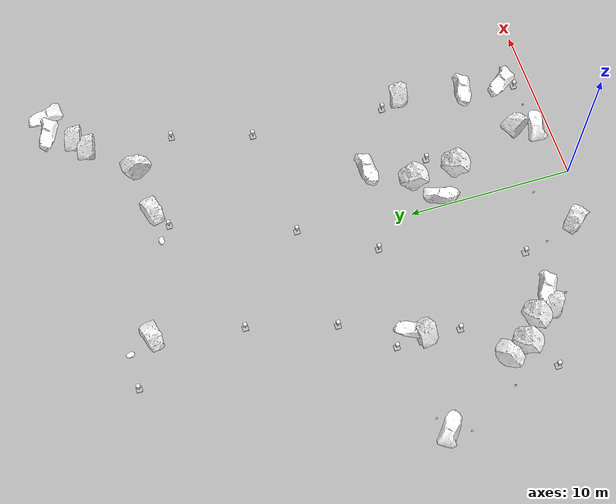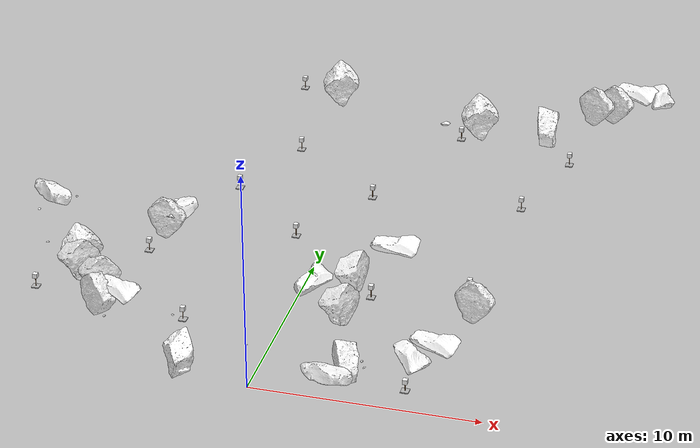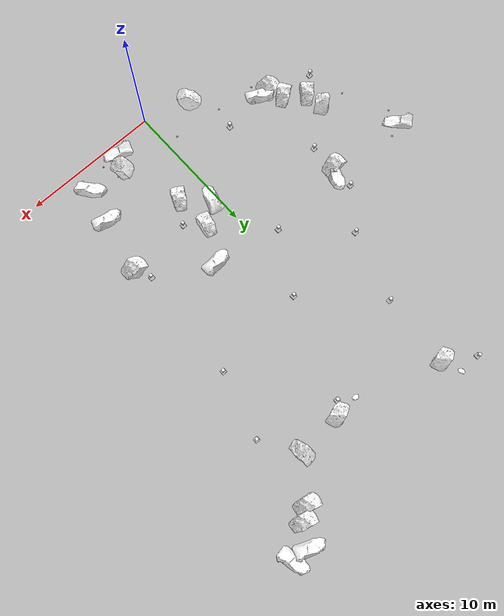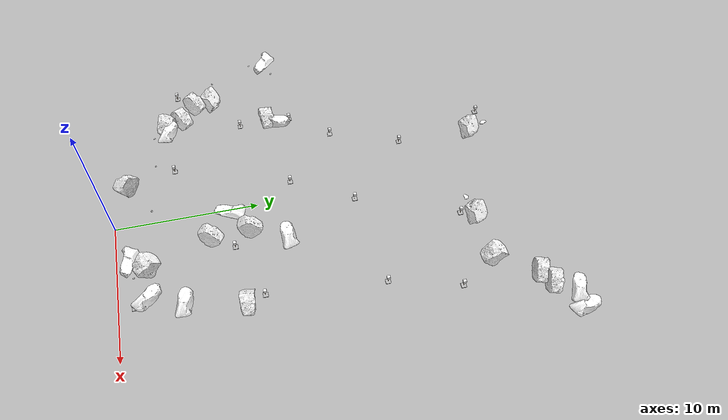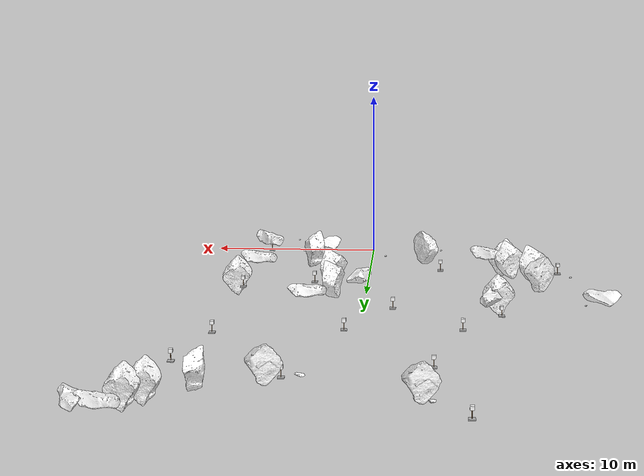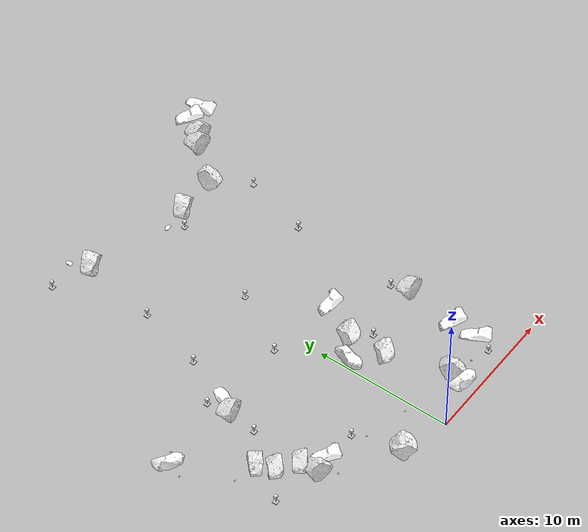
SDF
<sdf version="1.7">
 <world name="rover_world">
  <model name="Rock_2">
   <static>true</static>
   <pose>-4.3338 3.2414 0.8885 0.0000 0.0000 2.5552</pose>
   <link name="rock_link">
    <visual name="visual">
     <geometry><mesh><uri>model://rock_5/meshes/rock_5.obj</uri></mesh></geometry>
     <material>
      <ambient>1 1 1 1</ambient>
      <diffuse>1 1 1 1</diffuse>
      <pbr><metal><albedo_map>model://rock_5/meshes/rock_small_diffuse.jpg</albedo_map></metal></pbr>
     </material>
    </visual>
    <collision name="collision">
     <geometry><mesh><uri>model://rock_5/meshes/rock_5.obj</uri></mesh></geometry>
    </collision>
   </link>
  </model>
  <model name="Rock_3">
   <static>true</static>
   <pose>9.4094 27.0152 0.6893 0.0000 0.0000 -0.1512</pose>
   <link name="rock_link">
    <visual name="visual">
     <geometry><mesh><uri>model://rock_1/meshes/rock_1.obj</uri></mesh></geometry>
     <material>
      <ambient>1 1 1 1</ambient>
      <diffuse>1 1 1 1</diffuse>
      <pbr><metal><albedo_map>model://rock_1/meshes/rock_1_diffuse.jpg</albedo_map></metal></pbr>
     </material>
    </visual>
    <collision name="collision">
     <geometry><mesh><uri>model://rock_1/meshes/rock_1.obj</uri></mesh></geometry>
    </collision>
   </link>
  </model>
  <model name="Rock_5">
   <static>true</static>
   <pose>-11.9647 8.0767 0.6045 0.0000 0.0000 -2.3512</pose>
   <link name="rock_link">
    <visual name="visual">
     <geometry><mesh><uri>model://rock_5/meshes/rock_5.obj</uri></mesh></geometry>
     <material>
      <ambient>1 1 1 1</ambient>
      <diffuse>1 1 1 1</diffuse>
      <pbr><metal><albedo_map>model://rock_5/meshes/rock_small_diffuse.jpg</albedo_map></metal></pbr>
     </material>
    </visual>
    <collision name="collision">
     <geometry><mesh><uri>model://rock_5/meshes/rock_5.obj</uri></mesh></geometry>
    </collision>
   </link>
  </model>
  <model name="Rock_11">
   <static>true</static>
   <pose>-9.4877 6.1632 0.8550 0.0000 0.0000 0.9288</pose>
   <link name="rock_link">
    <visual name="visual">
     <geometry><mesh><uri>model://rock_1/meshes/rock_1.obj</uri></mesh></geometry>
     <material>
      <ambient>1 1 1 1</ambient>
      <diffuse>1 1 1 1</diffuse>
      <pbr><metal><albedo_map>model://rock_1/meshes/rock_1_diffuse.jpg</albedo_map></metal></pbr>
     </material>
    </visual>
    <collision name="collision">
     <geometry><mesh><uri>model://rock_1/meshes/rock_1.obj</uri></mesh></geometry>
    </collision>
   </link>
  </model>
  <model name="Rock_13">
   <static>true</static>
   <pose>0.4712 8.0057 0.2579 0.0000 0.0000 1.4002</pose>
   <link name="rock_link">
    <visual name="visual">
     <geometry><mesh><uri>model://rock_4/meshes/rock_4.obj</uri></mesh></geometry>
     <material>
      <ambient>1 1 1 1</ambient>
      <diffuse>1 1 1 1</diffuse>
      <pbr><metal><albedo_map>model://rock_4/meshes/rock_4_diffuse.jpg</albedo_map></metal></pbr>
     </material>
    </visual>
    <collision name="collision">
     <geometry><mesh><uri>model://rock_4/meshes/rock_4.obj</uri></mesh></geometry>
    </collision>
   </link>
  </model>
  <model name="Rock_14">
   <static>true</static>
   <pose>-7.4767 3.2230 0.3288 0.0000 0.0000 -0.8752</pose>
   <link name="rock_link">
    <visual name="visual">
     <geometry><mesh><uri>model://rock_5/meshes/rock_5.obj</uri></mesh></geometry>
     <material>
      <ambient>1 1 1 1</ambient>
      <diffuse>1 1 1 1</diffuse>
      <pbr><metal><albedo_map>model://rock_5/meshes/rock_small_diffuse.jpg</albedo_map></metal></pbr>
     </material>
    </visual>
    <collision name="collision">
     <geometry><mesh><uri>model://rock_5/meshes/rock_5.obj</uri></mesh></geometry>
    </collision>
   </link>
  </model>
  <model name="Rock_15">
   <static>true</static>
   <pose>4.6874 1.2775 0.9768 0.0000 0.0000 -1.5824</pose>
   <link name="rock_link">
    <visual name="visual">
     <geometry><mesh><uri>model://rock_5/meshes/rock_5.obj</uri></mesh></geometry>
     <material>
      <ambient>1 1 1 1</ambient>
      <diffuse>1 1 1 1</diffuse>
      <pbr><metal><albedo_map>model://rock_5/meshes/rock_small_diffuse.jpg</albedo_map></metal></pbr>
     </material>
    </visual>
    <collision name="collision">
     <geometry><mesh><uri>model://rock_5/meshes/rock_5.obj</uri></mesh></geometry>
    </collision>
   </link>
  </model>
  <model name="Rock_18">
   <static>true</static>
   <pose>6.4301 2.1367 0.9613 0.0000 0.0000 -0.7533</pose>
   <link name="rock_link">
    <visual name="visual">
     <geometry><mesh><uri>model://rock_4/meshes/rock_4.obj</uri></mesh></geometry>
     <material>
      <ambient>1 1 1 1</ambient>
      <diffuse>1 1 1 1</diffuse>
      <pbr><metal><albedo_map>model://rock_4/meshes/rock_4_diffuse.jpg</albedo_map></metal></pbr>
     </material>
    </visual>
    <collision name="collision">
     <geometry><mesh><uri>model://rock_4/meshes/rock_4.obj</uri></mesh></geometry>
    </collision>
   </link>
  </model>
  <model name="Rock_21">
   <static>true</static>
   <pose>7.1123 24.9508 0.4531 0.0000 0.0000 -1.3642</pose>
   <link name="rock_link">
    <visual name="visual">
     <geometry><mesh><uri>model://rock_1/meshes/rock_1.obj</uri></mesh></geometry>
     <material>
      <ambient>1 1 1 1</ambient>
      <diffuse>1 1 1 1</diffuse>
      <pbr><metal><albedo_map>model://rock_1/meshes/rock_1_diffuse.jpg</albedo_map></metal></pbr>
     </material>
    </visual>
    <collision name="collision">
     <geometry><mesh><uri>model://rock_1/meshes/rock_1.obj</uri></mesh></geometry>
    </collision>
   </link>
  </model>
  <model name="Rock_22">
   <static>true</static>
   <pose>-7.6215 11.3035 0.4455 0.0000 0.0000 0.1312</pose>
   <link name="rock_link">
    <visual name="visual">
     <geometry><mesh><uri>model://rock_1/meshes/rock_1.obj</uri></mesh></geometry>
     <material>
      <ambient>1 1 1 1</ambient>
      <diffuse>1 1 1 1</diffuse>
      <pbr><metal><albedo_map>model://rock_1/meshes/rock_1_diffuse.jpg</albedo_map></metal></pbr>
     </material>
    </visual>
    <collision name="collision">
     <geometry><mesh><uri>model://rock_1/meshes/rock_1.obj</uri></mesh></geometry>
    </collision>
   </link>
  </model>
  <model name="Rock_27">
   <static>true</static>
   <pose>-3.4315 27.1530 0.5659 0.0000 0.0000 -2.8095</pose>
   <link name="rock_link">
    <visual name="visual">
     <geometry><mesh><uri>model://rock_1/meshes/rock_1.obj</uri></mesh></geometry>
     <material>
      <ambient>1 1 1 1</ambient>
      <diffuse>1 1 1 1</diffuse>
      <pbr><metal><albedo_map>model://rock_1/meshes/rock_1_diffuse.jpg</albedo_map></metal></pbr>
     </material>
    </visual>
    <collision name="collision">
     <geometry><mesh><uri>model://rock_1/meshes/rock_1.obj</uri></mesh></geometry>
    </collision>
   </link>
  </model>
  <model name="Rock_28">
   <static>true</static>
   <pose>6.9283 4.3411 0.3462 0.0000 0.0000 -0.0872</pose>
   <link name="rock_link">
    <visual name="visual">
     <geometry><mesh><uri>model://rock_4/meshes/rock_4.obj</uri></mesh></geometry>
     <material>
      <ambient>1 1 1 1</ambient>
      <diffuse>1 1 1 1</diffuse>
      <pbr><metal><albedo_map>model://rock_4/meshes/rock_4_diffuse.jpg</albedo_map></metal></pbr>
     </material>
    </visual>
    <collision name="collision">
     <geometry><mesh><uri>model://rock_4/meshes/rock_4.obj</uri></mesh></geometry>
    </collision>
   </link>
  </model>
  <model name="Rock_30">
   <static>true</static>
   <pose>4.3004 2.3384 0.5464 0.0000 0.0000 -0.7868</pose>
   <link name="rock_link">
    <visual name="visual">
     <geometry><mesh><uri>model://rock_5/meshes/rock_5.obj</uri></mesh></geometry>
     <material>
      <ambient>1 1 1 1</ambient>
      <diffuse>1 1 1 1</diffuse>
      <pbr><metal><albedo_map>model://rock_5/meshes/rock_small_diffuse.jpg</albedo_map></metal></pbr>
     </material>
    </visual>
    <collision name="collision">
     <geometry><mesh><uri>model://rock_5/meshes/rock_5.obj</uri></mesh></geometry>
    </collision>
   </link>
  </model>
  <model name="Rock_34">
   <static>true</static>
   <pose>11.2532 29.5879 0.3222 0.0000 0.0000 -0.2018</pose>
   <link name="rock_link">
    <visual name="visual">
     <geometry><mesh><uri>model://rock_4/meshes/rock_4.obj</uri></mesh></geometry>
     <material>
      <ambient>1 1 1 1</ambient>
      <diffuse>1 1 1 1</diffuse>
      <pbr><metal><albedo_map>model://rock_4/meshes/rock_4_diffuse.jpg</albedo_map></metal></pbr>
     </material>
    </visual>
    <collision name="collision">
     <geometry><mesh><uri>model://rock_4/meshes/rock_4.obj</uri></mesh></geometry>
    </collision>
   </link>
  </model>
  <model name="Rock_37">
   <static>true</static>
   <pose>3.2085 0.9124 0.3672 0.0000 0.0000 3.0550</pose>
   <link name="rock_link">
    <visual name="visual">
     <geometry><mesh><uri>model://rock_4/meshes/rock_4.obj</uri></mesh></geometry>
     <material>
      <ambient>1 1 1 1</ambient>
      <diffuse>1 1 1 1</diffuse>
      <pbr><metal><albedo_map>model://rock_4/meshes/rock_4_diffuse.jpg</albedo_map></metal></pbr>
     </material>
    </visual>
    <collision name="collision">
     <geometry><mesh><uri>model://rock_4/meshes/rock_4.obj</uri></mesh></geometry>
    </collision>
   </link>
  </model>
  <model name="Rock_38">
   <static>true</static>
   <pose>3.3098 11.7038 0.3784 0.0000 0.0000 0.1927</pose>
   <link name="rock_link">
    <visual name="visual">
     <geometry><mesh><uri>model://rock_4/meshes/rock_4.obj</uri></mesh></geometry>
     <material>
      <ambient>1 1 1 1</ambient>
      <diffuse>1 1 1 1</diffuse>
      <pbr><metal><albedo_map>model://rock_4/meshes/rock_4_diffuse.jpg</albedo_map></metal></pbr>
     </material>
    </visual>
    <collision name="collision">
     <geometry><mesh><uri>model://rock_4/meshes/rock_4.obj</uri></mesh></geometry>
    </collision>
   </link>
  </model>
  <model name="Rock_39">
   <static>true</static>
   <pose>-8.2333 5.0610 0.8232 0.0000 0.0000 0.7274</pose>
   <link name="rock_link">
    <visual name="visual">
     <geometry><mesh><uri>model://rock_1/meshes/rock_1.obj</uri></mesh></geometry>
     <material>
      <ambient>1 1 1 1</ambient>
      <diffuse>1 1 1 1</diffuse>
      <pbr><metal><albedo_map>model://rock_1/meshes/rock_1_diffuse.jpg</albedo_map></metal></pbr>
     </material>
    </visual>
    <collision name="collision">
     <geometry><mesh><uri>model://rock_1/meshes/rock_1.obj</uri></mesh></geometry>
    </collision>
   </link>
  </model>
  <model name="Rock_41">
   <static>true</static>
   <pose>-13.3058 12.3646 0.3723 0.0000 0.0000 2.6397</pose>
   <link name="rock_link">
    <visual name="visual">
     <geometry><mesh><uri>model://rock_4/meshes/rock_4.obj</uri></mesh></geometry>
     <material>
      <ambient>1 1 1 1</ambient>
      <diffuse>1 1 1 1</diffuse>
      <pbr><metal><albedo_map>model://rock_4/meshes/rock_4_diffuse.jpg</albedo_map></metal></pbr>
     </material>
    </visual>
    <collision name="collision">
     <geometry><mesh><uri>model://rock_4/meshes/rock_4.obj</uri></mesh></geometry>
    </collision>
   </link>
  </model>
  <model name="Rock_42">
   <static>true</static>
   <pose>12.5382 29.4933 0.3363 0.0000 0.0000 -1.1986</pose>
   <link name="rock_link">
    <visual name="visual">
     <geometry><mesh><uri>model://rock_4/meshes/rock_4.obj</uri></mesh></geometry>
     <material>
      <ambient>1 1 1 1</ambient>
      <diffuse>1 1 1 1</diffuse>
      <pbr><metal><albedo_map>model://rock_4/meshes/rock_4_diffuse.jpg</albedo_map></metal></pbr>
     </material>
    </visual>
    <collision name="collision">
     <geometry><mesh><uri>model://rock_4/meshes/rock_4.obj</uri></mesh></geometry>
    </collision>
   </link>
  </model>
  <model name="Rock_43">
   <static>true</static>
   <pose>-10.4777 8.1759 0.5954 0.0000 0.0000 -2.3483</pose>
   <link name="rock_link">
    <visual name="visual">
     <geometry><mesh><uri>model://rock_1/meshes/rock_1.obj</uri></mesh></geometry>
     <material>
      <ambient>1 1 1 1</ambient>
      <diffuse>1 1 1 1</diffuse>
      <pbr><metal><albedo_map>model://rock_1/meshes/rock_1_diffuse.jpg</albedo_map></metal></pbr>
     </material>
    </visual>
    <collision name="collision">
     <geometry><mesh><uri>model://rock_1/meshes/rock_1.obj</uri></mesh></geometry>
    </collision>
   </link>
  </model>
  <model name="Rock_44">
   <static>true</static>
   <pose>2.5189 9.0520 0.5126 0.0000 0.0000 1.4471</pose>
   <link name="rock_link">
    <visual name="visual">
     <geometry><mesh><uri>model://rock_1/meshes/rock_1.obj</uri></mesh></geometry>
     <material>
      <ambient>1 1 1 1</ambient>
      <diffuse>1 1 1 1</diffuse>
      <pbr><metal><albedo_map>model://rock_1/meshes/rock_1_diffuse.jpg</albedo_map></metal></pbr>
     </material>
    </visual>
    <collision name="collision">
     <geometry><mesh><uri>model://rock_1/meshes/rock_1.obj</uri></mesh></geometry>
    </collision>
   </link>
  </model>
  <model name="Rock_47">
   <static>true</static>
   <pose>7.6584 7.8060 0.4379 0.0000 0.0000 -0.0052</pose>
   <link name="rock_link">
    <visual name="visual">
     <geometry><mesh><uri>model://rock_1/meshes/rock_1.obj</uri></mesh></geometry>
     <material>
      <ambient>1 1 1 1</ambient>
      <diffuse>1 1 1 1</diffuse>
      <pbr><metal><albedo_map>model://rock_1/meshes/rock_1_diffuse.jpg</albedo_map></metal></pbr>
     </material>
    </visual>
    <collision name="collision">
     <geometry><mesh><uri>model://rock_1/meshes/rock_1.obj</uri></mesh></geometry>
    </collision>
   </link>
  </model>
  <model name="Rock_48">
   <static>true</static>
   <pose>-13.6411 11.2184 0.3448 0.0000 0.0000 1.3356</pose>
   <link name="rock_link">
    <visual name="visual">
     <geometry><mesh><uri>model://rock_5/meshes/rock_5.obj</uri></mesh></geometry>
     <material>
      <ambient>1 1 1 1</ambient>
      <diffuse>1 1 1 1</diffuse>
      <pbr><metal><albedo_map>model://rock_5/meshes/rock_small_diffuse.jpg</albedo_map></metal></pbr>
     </material>
    </visual>
    <collision name="collision">
     <geometry><mesh><uri>model://rock_5/meshes/rock_5.obj</uri></mesh></geometry>
    </collision>
   </link>
  </model>
  <model name="Rock_50">
   <static>true</static>
   <pose>4.1854 25.2223 0.6471 0.0000 0.0000 -2.7595</pose>
   <link name="rock_link">
    <visual name="visual">
     <geometry><mesh><uri>model://rock_1/meshes/rock_1.obj</uri></mesh></geometry>
     <material>
      <ambient>1 1 1 1</ambient>
      <diffuse>1 1 1 1</diffuse>
      <pbr><metal><albedo_map>model://rock_1/meshes/rock_1_diffuse.jpg</albedo_map></metal></pbr>
     </material>
    </visual>
    <collision name="collision">
     <geometry><mesh><uri>model://rock_1/meshes/rock_1.obj</uri></mesh></geometry>
    </collision>
   </link>
  </model>
  <model name="Rock_53">
   <static>true</static>
   <pose>-0.8589 2.6259 0.3312 0.0000 0.0000 2.7270</pose>
   <link name="rock_link">
    <visual name="visual">
     <geometry><mesh><uri>model://rock_5/meshes/rock_5.obj</uri></mesh></geometry>
     <material>
      <ambient>1 1 1 1</ambient>
      <diffuse>1 1 1 1</diffuse>
      <pbr><metal><albedo_map>model://rock_5/meshes/rock_small_diffuse.jpg</albedo_map></metal></pbr>
     </material>
    </visual>
    <collision name="collision">
     <geometry><mesh><uri>model://rock_5/meshes/rock_5.obj</uri></mesh></geometry>
    </collision>
   </link>
  </model>
  <model name="Rock_59">
   <static>true</static>
   <pose>-7.2591 4.4158 0.7462 0.0000 0.0000 -0.3174</pose>
   <link name="rock_link">
    <visual name="visual">
     <geometry><mesh><uri>model://rock_4/meshes/rock_4.obj</uri></mesh></geometry>
     <material>
      <ambient>1 1 1 1</ambient>
      <diffuse>1 1 1 1</diffuse>
      <pbr><metal><albedo_map>model://rock_4/meshes/rock_4_diffuse.jpg</albedo_map></metal></pbr>
     </material>
    </visual>
    <collision name="collision">
     <geometry><mesh><uri>model://rock_4/meshes/rock_4.obj</uri></mesh></geometry>
    </collision>
   </link>
  </model>
  <model name="Rock_61">
   <static>true</static>
   <pose>2.6144 6.1983 0.4876 0.0000 0.0000 1.1611</pose>
   <link name="rock_link">
    <visual name="visual">
     <geometry><mesh><uri>model://rock_1/meshes/rock_1.obj</uri></mesh></geometry>
     <material>
      <ambient>1 1 1 1</ambient>
      <diffuse>1 1 1 1</diffuse>
      <pbr><metal><albedo_map>model://rock_1/meshes/rock_1_diffuse.jpg</albedo_map></metal></pbr>
     </material>
    </visual>
    <collision name="collision">
     <geometry><mesh><uri>model://rock_1/meshes/rock_1.obj</uri></mesh></geometry>
    </collision>
   </link>
  </model>
  <model name="Rock_62">
   <static>true</static>
   <pose>-2.9504 1.3031 0.4029 0.0000 0.0000 2.3505</pose>
   <link name="rock_link">
    <visual name="visual">
     <geometry><mesh><uri>model://rock_1/meshes/rock_1.obj</uri></mesh></geometry>
     <material>
      <ambient>1 1 1 1</ambient>
      <diffuse>1 1 1 1</diffuse>
      <pbr><metal><albedo_map>model://rock_1/meshes/rock_1_diffuse.jpg</albedo_map></metal></pbr>
     </material>
    </visual>
    <collision name="collision">
     <geometry><mesh><uri>model://rock_1/meshes/rock_1.obj</uri></mesh></geometry>
    </collision>
   </link>
  </model>
  <model name="Rock_73">
   <static>true</static>
   <pose>3.2151 1.9229 0.4902 0.0000 0.0000 -1.0682</pose>
   <link name="rock_link">
    <visual name="visual">
     <geometry><mesh><uri>model://rock_1/meshes/rock_1.obj</uri></mesh></geometry>
     <material>
      <ambient>1 1 1 1</ambient>
      <diffuse>1 1 1 1</diffuse>
      <pbr><metal><albedo_map>model://rock_1/meshes/rock_1_diffuse.jpg</albedo_map></metal></pbr>
     </material>
    </visual>
    <collision name="collision">
     <geometry><mesh><uri>model://rock_1/meshes/rock_1.obj</uri></mesh></geometry>
    </collision>
   </link>
  </model>
  <model name="Rock_78">
   <static>true</static>
   <pose>-8.4663 3.9484 0.6467 0.0000 0.0000 -0.4961</pose>
   <link name="rock_link">
    <visual name="visual">
     <geometry><mesh><uri>model://rock_1/meshes/rock_1.obj</uri></mesh></geometry>
     <material>
      <ambient>1 1 1 1</ambient>
      <diffuse>1 1 1 1</diffuse>
      <pbr><metal><albedo_map>model://rock_1/meshes/rock_1_diffuse.jpg</albedo_map></metal></pbr>
     </material>
    </visual>
    <collision name="collision">
     <geometry><mesh><uri>model://rock_1/meshes/rock_1.obj</uri></mesh></geometry>
    </collision>
   </link>
  </model>
  <model name="Rock_81">
   <static>true</static>
   <pose>-3.9130 28.0798 0.2544 0.0000 0.0000 -1.5016</pose>
   <link name="rock_link">
    <visual name="visual">
     <geometry><mesh><uri>model://rock_8/meshes/rock_8.obj</uri></mesh></geometry>
     <material>
      <ambient>1 1 1 1</ambient>
      <diffuse>1 1 1 1</diffuse>
      <pbr><metal><albedo_map>model://rock_5/meshes/rock_small_diffuse.jpg</albedo_map></metal></pbr>
     </material>
    </visual>
    <collision name="collision">
     <geometry><mesh><uri>model://rock_8/meshes/rock_8.obj</uri></mesh></geometry>
    </collision>
   </link>
  </model>
  <model name="Rock_88">
   <static>true</static>
   <pose>10.2940 27.6255 0.6044 0.0000 0.0000 -0.1288</pose>
   <link name="rock_link">
    <visual name="visual">
     <geometry><mesh><uri>model://rock_1/meshes/rock_1.obj</uri></mesh></geometry>
     <material>
      <ambient>1 1 1 1</ambient>
      <diffuse>1 1 1 1</diffuse>
      <pbr><metal><albedo_map>model://rock_1/meshes/rock_1_diffuse.jpg</albedo_map></metal></pbr>
     </material>
    </visual>
    <collision name="collision">
     <geometry><mesh><uri>model://rock_1/meshes/rock_1.obj</uri></mesh></geometry>
    </collision>
   </link>
  </model>
  <model name="Rock_91">
   <static>true</static>
   <pose>-7.1470 12.4487 0.3002 0.0000 0.0000 -1.7960</pose>
   <link name="rock_link">
    <visual name="visual">
     <geometry><mesh><uri>model://rock_4/meshes/rock_4.obj</uri></mesh></geometry>
     <material>
      <ambient>1 1 1 1</ambient>
      <diffuse>1 1 1 1</diffuse>
      <pbr><metal><albedo_map>model://rock_4/meshes/rock_4_diffuse.jpg</albedo_map></metal></pbr>
     </material>
    </visual>
    <collision name="collision">
     <geometry><mesh><uri>model://rock_4/meshes/rock_4.obj</uri></mesh></geometry>
    </collision>
   </link>
  </model>
  <model name="Rock_123">
   <static>true</static>
   <pose>-12.4082 12.8481 0.3149 0.0000 0.0000 2.3777</pose>
   <link name="rock_link">
    <visual name="visual">
     <geometry><mesh><uri>model://rock_5/meshes/rock_5.obj</uri></mesh></geometry>
     <material>
      <ambient>1 1 1 1</ambient>
      <diffuse>1 1 1 1</diffuse>
      <pbr><metal><albedo_map>model://rock_5/meshes/rock_small_diffuse.jpg</albedo_map></metal></pbr>
     </material>
    </visual>
    <collision name="collision">
     <geometry><mesh><uri>model://rock_5/meshes/rock_5.obj</uri></mesh></geometry>
    </collision>
   </link>
  </model>
  <model name="Rock_170">
   <static>true</static>
   <pose>2.5360 24.6837 0.2121 0.0000 0.0000 2.8446</pose>
   <link name="rock_link">
    <visual name="visual">
     <geometry><mesh><uri>model://rock_8/meshes/rock_8.obj</uri></mesh></geometry>
     <material>
      <ambient>1 1 1 1</ambient>
      <diffuse>1 1 1 1</diffuse>
      <pbr><metal><albedo_map>model://rock_5/meshes/rock_small_diffuse.jpg</albedo_map></metal></pbr>
     </material>
    </visual>
    <collision name="collision">
     <geometry><mesh><uri>model://rock_8/meshes/rock_8.obj</uri></mesh></geometry>
    </collision>
   </link>
  </model>
  <model name="ArUco_51">
   <static>true</static>
   <pose>3.1830 8.0120 0.0848 0.0000 0.0000 0.0000</pose>
   <include><uri>model://aruco_1</uri></include>
  </model>
  <model name="ArUco_52">
   <static>true</static>
   <pose>7.2690 9.4820 0.1802 0.0000 0.0000 0.0000</pose>
   <include><uri>model://aruco_2</uri></include>
  </model>
  <model name="ArUco_53">
   <static>true</static>
   <pose>7.8780 17.5830 -0.0338 0.0000 0.0000 0.0000</pose>
   <include><uri>model://aruco_3</uri></include>
  </model>
  <model name="ArUco_54">
   <static>true</static>
   <pose>9.2250 22.3890 -0.0094 0.0000 0.0000 0.0000</pose>
   <include><uri>model://aruco_4</uri></include>
  </model>
  <model name="ArUco_55">
   <static>true</static>
   <pose>3.5180 23.9900 -0.2141 0.0000 0.0000 0.0000</pose>
   <include><uri>model://aruco_5</uri></include>
  </model>
  <model name="ArUco_56">
   <static>true</static>
   <pose>0.8820 16.8700 -0.0291 0.0000 0.0000 0.0000</pose>
   <include><uri>model://aruco_6</uri></include>
  </model>
  <model name="ArUco_57">
   <static>true</static>
   <pose>-3.9440 21.4150 -0.4839 0.0000 0.0000 0.0000</pose>
   <include><uri>model://aruco_7</uri></include>
  </model>
  <model name="ArUco_58">
   <static>true</static>
   <pose>-5.4910 16.3340 -0.1219 0.0000 0.0000 0.0000</pose>
   <include><uri>model://aruco_8</uri></include>
  </model>
  <model name="ArUco_59">
   <static>true</static>
   <pose>-7.6950 13.5280 -0.1686 0.0000 0.0000 0.0000</pose>
   <include><uri>model://aruco_9</uri></include>
  </model>
  <model name="ArUco_60">
   <static>true</static>
   <pose>-1.6100 12.6020 -0.0891 0.0000 0.0000 0.0000</pose>
   <include><uri>model://aruco_10</uri></include>
  </model>
  <model name="ArUco_61">
   <static>true</static>
   <pose>-7.7150 9.7210 -0.1552 0.0000 0.0000 0.0000</pose>
   <include><uri>model://aruco_11</uri></include>
  </model>
  <model name="ArUco_62">
   <static>true</static>
   <pose>-4.3110 4.4420 -0.0941 0.0000 0.0000 0.0000</pose>
   <include><uri>model://aruco_12</uri></include>
  </model>
  <model name="ArUco_63">
   <static>true</static>
   <pose>-5.7200 28.1180 -0.5995 0.0000 0.0000 0.0000</pose>
   <include><uri>model://aruco_13</uri></include>
  </model>
  <model name="ArUco_64">
   <static>true</static>
   <pose>-11.4380 5.2300 -0.0011 0.0000 0.0000 0.0000</pose>
   <include><uri>model://aruco_14</uri></include>
  </model>
  <model name="ArUco_65">
   <static>true</static>
   <pose>6.4830 1.1020 0.2112 0.0000 0.0000 0.0000</pose>
   <include><uri>model://aruco_15</uri></include>
  </model>
 </world>
</sdf>
